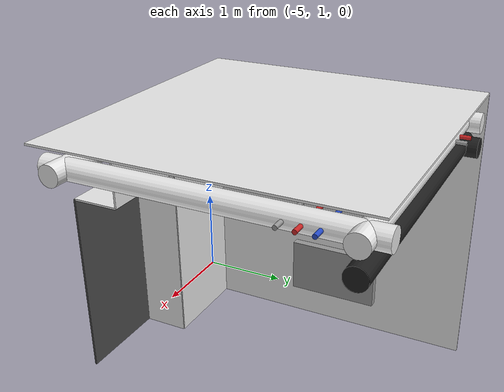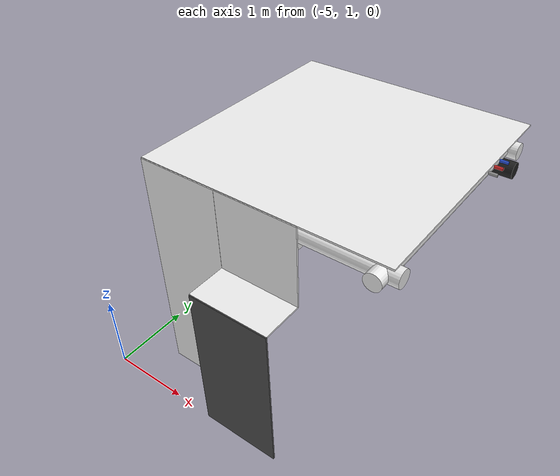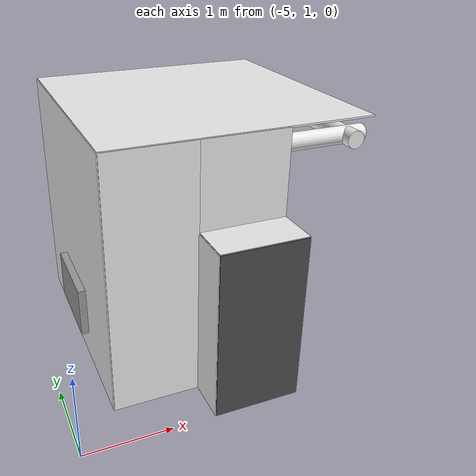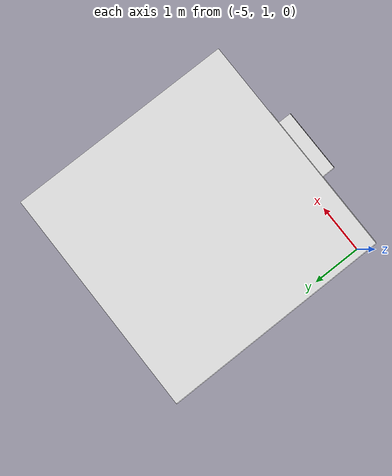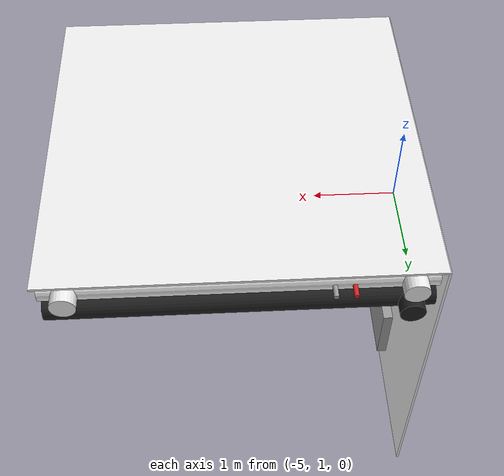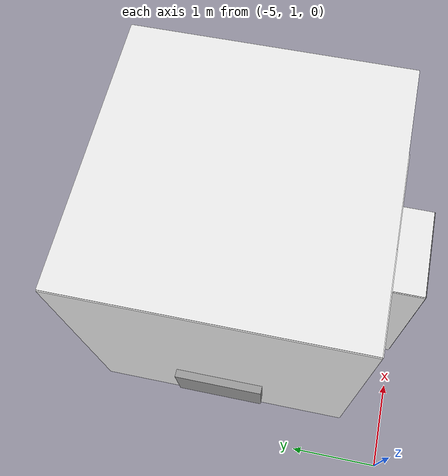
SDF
<sdf version="1.6">
 <world name="default">
  <model name="wall_front_-1_1_0_2">
   <static>1</static>
   <pose>-4.5 3.0 1.5 0.0 0.0 1.57</pose>
   <link name="link">
    <collision name="collision"><geometry><box><size>3.0 0.02 3.0</size></box></geometry></collision>
    <visual name="visual">
     <material>
      <script><name>Gazebo/White</name><uri>file://media/materials/scripts/gazebo.material</uri></script>
     </material>
     <geometry><box><size>3.0 0.02 3.0</size></box></geometry>
    </visual>
   </link>
  </model>
  <model name="wall_top_-1_1_0_2">
   <static>1</static>
   <pose>-3.0 3.0 3.0 1.57 0.0 1.57</pose>
   <link name="link">
    <collision name="collision"><geometry><box><size>3.0 0.02 3.0</size></box></geometry></collision>
    <visual name="visual">
     <material>
      <script><name>Gazebo/White</name><uri>file://media/materials/scripts/gazebo.material</uri></script>
     </material>
     <geometry><box><size>3.0 0.02 3.0</size></box></geometry>
    </visual>
   </link>
  </model>
  <model name="white_pipe_left_-1_1_0_2">
   <static>1</static>
   <pose>-3.0 3.0 2.76 0.0 0.0 1.57</pose>
   <link name="link_0">
    <visual name="visual">
     <pose>-1.3 0 0 1.57 0 0</pose>
     <geometry><cylinder><radius>0.1</radius><length>3.0</length></cylinder></geometry>
     <material>
      <script><uri>file://media/materials/scripts/gazebo.material</uri><name>Gazebo/White</name></script>
     </material>
    </visual>
    <collision name="collision">
     <pose>-1.3 0 0 1.57 0 0</pose>
     <geometry><cylinder><radius>0.1</radius><length>3.0</length></cylinder></geometry>
    </collision>
   </link>
  </model>
  <model name="white_pipe_right_-1_1_0_2">
   <static>1</static>
   <pose>-3.0 3.0 2.76 0.0 0.0 1.57</pose>
   <link name="link_0">
    <visual name="visual">
     <pose>1.3 0 0 1.57 0 0</pose>
     <geometry><cylinder><radius>0.1</radius><length>3.0</length></cylinder></geometry>
     <material>
      <script><uri>file://media/materials/scripts/gazebo.material</uri><name>Gazebo/White</name></script>
     </material>
    </visual>
    <collision name="collision">
     <pose>1.3 0 0 1.57 0 0</pose>
     <geometry><cylinder><radius>0.1</radius><length>3.0</length></cylinder></geometry>
    </collision>
   </link>
  </model>
  <model name="black_pipe_right_-1_1_0_2">
   <static>1</static>
   <pose>-3.0 3.0 2.76 0.0 0.0 1.57</pose>
   <link name="link_0">
    <visual name="visual">
     <pose>1.3 0 -0.25 1.57 0 0</pose>
     <geometry><cylinder><radius>0.1</radius><length>3.0</length></cylinder></geometry>
     <material>
      <script><uri>file://media/materials/scripts/gazebo.material</uri><name>Gazebo/Black</name></script>
     </material>
    </visual>
    <collision name="collision">
     <pose>1.3 0 -0.25 1.57 0 0</pose>
     <geometry><cylinder><radius>0.1</radius><length>3.0</length></cylinder></geometry>
    </collision>
   </link>
  </model>
  <model name="grey_pipe_right_-1_1_0_2">
   <static>1</static>
   <pose>-3.0 3.0 2.76 0.0 0.0 1.57</pose>
   <link name="link_0">
    <visual name="visual">
     <pose>0.7 0 0 1.57 0 0</pose>
     <geometry><cylinder><radius>0.02</radius><length>3.0</length></cylinder></geometry>
     <material>
      <script><uri>file://media/materials/scripts/gazebo.material</uri><name>Gazebo/Grey</name></script>
     </material>
    </visual>
    <collision name="collision">
     <pose>0.7 0 0 1.57 0 0</pose>
     <geometry><cylinder><radius>0.02</radius><length>3.0</length></cylinder></geometry>
    </collision>
   </link>
  </model>
  <model name="red_pipe_right_-1_1_0_2">
   <static>1</static>
   <pose>-3.0 3.0 2.76 0.0 0.0 1.57</pose>
   <link name="link_0">
    <visual name="visual">
     <pose>0.85 0 0 1.57 0 0</pose>
     <geometry><cylinder><radius>0.02</radius><length>3.0</length></cylinder></geometry>
     <material>
      <script><uri>file://media/materials/scripts/gazebo.material</uri><name>Gazebo/Red</name></script>
     </material>
    </visual>
    <collision name="collision">
     <pose>0.85 0 0 1.57 0 0</pose>
     <geometry><cylinder><radius>0.02</radius><length>3.0</length></cylinder></geometry>
    </collision>
   </link>
  </model>
  <model name="blue_pipe_right_-1_1_0_2">
   <static>1</static>
   <pose>-3.0 3.0 2.76 0.0 0.0 1.57</pose>
   <link name="link_0">
    <visual name="visual">
     <pose>1 0 0 1.57 0 0</pose>
     <geometry><cylinder><radius>0.02</radius><length>3.0</length></cylinder></geometry>
     <material>
      <script><uri>file://media/materials/scripts/gazebo.material</uri><name>Gazebo/Blue</name></script>
     </material>
    </visual>
    <collision name="collision">
     <pose>1 0 0 1.57 0 0</pose>
     <geometry><cylinder><radius>0.02</radius><length>3.0</length></cylinder></geometry>
    </collision>
   </link>
  </model>
  <model name="white_pipe_left_1_-1_1_0_2">
   <static>1</static>
   <pose>-3.0 3.0 2.76 0.0 0.0 3.14</pose>
   <link name="link_0">
    <visual name="visual">
     <pose>-1.3 0 0 1.57 0 0</pose>
     <geometry><cylinder><radius>0.1</radius><length>3.0</length></cylinder></geometry>
     <material>
      <script><uri>file://media/materials/scripts/gazebo.material</uri><name>Gazebo/White</name></script>
     </material>
    </visual>
    <collision name="collision">
     <pose>-1.3 0 0 1.57 0 0</pose>
     <geometry><cylinder><radius>0.1</radius><length>3.0</length></cylinder></geometry>
    </collision>
   </link>
  </model>
  <model name="white_pipe_right_1_-1_1_0_2">
   <static>1</static>
   <pose>-3.0 3.0 2.76 0.0 0.0 3.14</pose>
   <link name="link_0">
    <visual name="visual">
     <pose>1.3 0 0 1.57 0 0</pose>
     <geometry><cylinder><radius>0.1</radius><length>3.0</length></cylinder></geometry>
     <material>
      <script><uri>file://media/materials/scripts/gazebo.material</uri><name>Gazebo/White</name></script>
     </material>
    </visual>
    <collision name="collision">
     <pose>1.3 0 0 1.57 0 0</pose>
     <geometry><cylinder><radius>0.1</radius><length>3.0</length></cylinder></geometry>
    </collision>
   </link>
  </model>
  <model name="black_pipe_right_1_-1_1_0_2">
   <static>1</static>
   <pose>-3.0 3.0 2.76 0.0 0.0 3.14</pose>
   <link name="link_0">
    <visual name="visual">
     <pose>1.3 0 -0.25 1.57 0 0</pose>
     <geometry><cylinder><radius>0.1</radius><length>3.0</length></cylinder></geometry>
     <material>
      <script><uri>file://media/materials/scripts/gazebo.material</uri><name>Gazebo/Black</name></script>
     </material>
    </visual>
    <collision name="collision">
     <pose>1.3 0 -0.25 1.57 0 0</pose>
     <geometry><cylinder><radius>0.1</radius><length>3.0</length></cylinder></geometry>
    </collision>
   </link>
  </model>
  <model name="grey_pipe_right_1_-1_1_0_2">
   <static>1</static>
   <pose>-3.0 3.0 2.76 0.0 0.0 3.14</pose>
   <link name="link_0">
    <visual name="visual">
     <pose>0.7 0 0 1.57 0 0</pose>
     <geometry><cylinder><radius>0.02</radius><length>3.0</length></cylinder></geometry>
     <material>
      <script><uri>file://media/materials/scripts/gazebo.material</uri><name>Gazebo/Grey</name></script>
     </material>
    </visual>
    <collision name="collision">
     <pose>0.7 0 0 1.57 0 0</pose>
     <geometry><cylinder><radius>0.02</radius><length>3.0</length></cylinder></geometry>
    </collision>
   </link>
  </model>
  <model name="red_pipe_right_1_-1_1_0_2">
   <static>1</static>
   <pose>-3.0 3.0 2.76 0.0 0.0 3.14</pose>
   <link name="link_0">
    <visual name="visual">
     <pose>0.85 0 0 1.57 0 0</pose>
     <geometry><cylinder><radius>0.02</radius><length>3.0</length></cylinder></geometry>
     <material>
      <script><uri>file://media/materials/scripts/gazebo.material</uri><name>Gazebo/Red</name></script>
     </material>
    </visual>
    <collision name="collision">
     <pose>0.85 0 0 1.57 0 0</pose>
     <geometry><cylinder><radius>0.02</radius><length>3.0</length></cylinder></geometry>
    </collision>
   </link>
  </model>
  <model name="wall_left_front_left_-1_1_0_2">
   <static>1</static>
   <pose>-4.0 1.5 1.5 0.0 0.0 3.14</pose>
   <link name="link">
    <collision name="collision"><geometry><box><size>1.0 0.02 3.0</size></box></geometry></collision>
    <visual name="visual">
     <material>
      <script><name>Gazebo/White</name><uri>file://media/materials/scripts/gazebo.material</uri></script>
     </material>
     <geometry><box><size>1.0 0.02 3.0</size></box></geometry>
    </visual>
   </link>
  </model>
  <model name="wall_left_front_up_-1_1_0_2">
   <static>1</static>
   <pose>-3.0 1.5 2.5 0.0 0.0 3.14</pose>
   <link name="link">
    <collision name="collision"><geometry><box><size>1.0 0.02 1.0</size></box></geometry></collision>
    <visual name="visual">
     <material>
      <script><name>Gazebo/White</name><uri>file://media/materials/scripts/gazebo.material</uri></script>
     </material>
     <geometry><box><size>1.0 0.02 1.0</size></box></geometry>
    </visual>
   </link>
  </model>
  <model name="wall_left_inside_back_-1_1_0_2">
   <static>1</static>
   <pose>-3.0 1.0 1.0 0.0 0.0 3.14</pose>
   <link name="link">
    <collision name="collision"><geometry><box><size>1 0.02 2</size></box></geometry></collision>
    <visual name="visual">
     <material>
      <script><name>Gazebo/DarkGrey</name><uri>file://media/materials/scripts/gazebo.material</uri></script>
     </material>
     <geometry><box><size>1 0.02 2</size></box></geometry>
    </visual>
   </link>
  </model>
  <model name="wall_left_inside_left_-1_1_0_2">
   <static>1</static>
   <pose>-3.5 1.25 1.0 0.0 0.0 1.57</pose>
   <link name="link">
    <collision name="collision"><geometry><box><size>0.5 0.02 2</size></box></geometry></collision>
    <visual name="visual">
     <material>
      <script><name>Gazebo/White</name><uri>file://media/materials/scripts/gazebo.material</uri></script>
     </material>
     <geometry><box><size>0.5 0.02 2</size></box></geometry>
    </visual>
   </link>
  </model>
  <model name="wall_left_inside_top_-1_1_0_2">
   <static>1</static>
   <pose>-3.0 1.25 2.0 1.57 0.0 3.14</pose>
   <link name="link">
    <collision name="collision"><geometry><box><size>1 0.02 0.5</size></box></geometry></collision>
    <visual name="visual">
     <material>
      <script><name>Gazebo/White</name><uri>file://media/materials/scripts/gazebo.material</uri></script>
     </material>
     <geometry><box><size>1 0.02 0.5</size></box></geometry>
    </visual>
   </link>
  </model>
  <model name="panel_-1_1_0_2">
   <static>1</static>
   <pose>-4.5 3.0 0.66 0.0 0.0 3.14</pose>
   <link name="link">
    <collision name="collision"><geometry><box><size>0.2 1 0.6</size></box></geometry></collision>
    <visual name="visual">
     <material>
      <script><name>Gazebo/Grey</name><uri>file://media/materials/scripts/gazebo.material</uri></script>
     </material>
     <geometry><box><size>0.2 1 0.6</size></box></geometry>
    </visual>
   </link>
  </model>
 </world>
</sdf>
